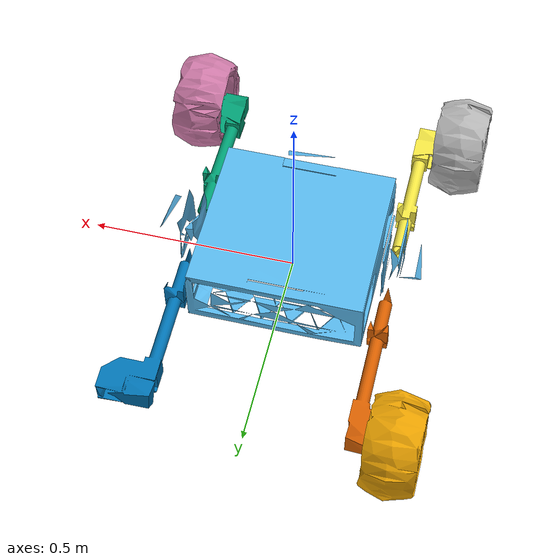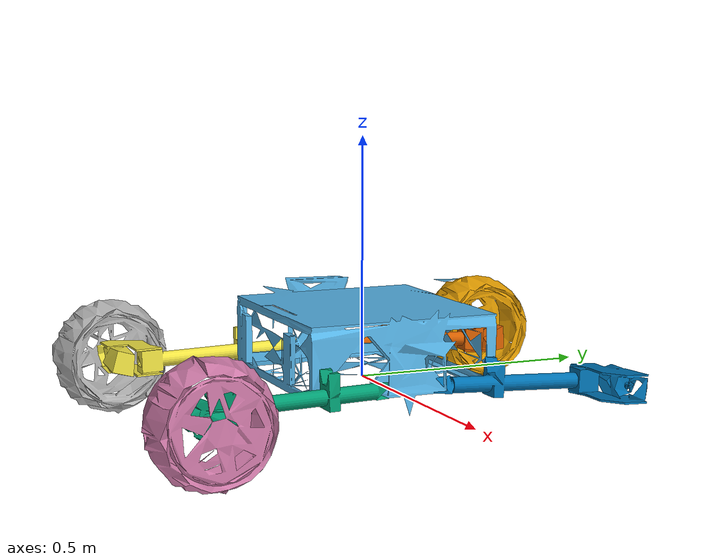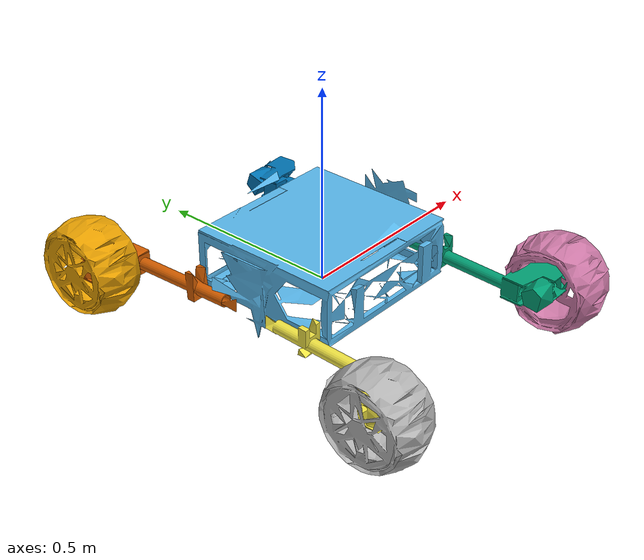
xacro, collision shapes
<?xml version="1.0"?>
<robot xmlns:xacro="http://www.ros.org/wiki/xacro"  name="eve">

    <xacro:arg name="mesh_path" default="package://mks_description/meshes"/>

    <link name="root" />

    <link name="chassis">
        <visual>
            <origin xyz="0 0 0.0" rpy="${pi/2} 0 0"/>
            <geometry>
                <mesh filename="$(arg mesh_path)/chassis.stl" scale="0.001 0.001 0.001"/>
            </geometry>
        </visual>
        <collision>
            <origin xyz="0 0 0" rpy="${pi/2} 0 0"/>
            <geometry>
                <mesh filename="$(arg mesh_path)/simplified_meshes/chassis_simp.stl" scale="0.001 0.001 0.001"/>
            </geometry>
        </collision>
        <inertial>
            <origin xyz="0 0 0" rpy="0 0 0"/>
            <mass value="5.0"/>
            <inertia ixx="0.013" ixy="0" ixz="0" iyy="0.009" iyz="0" izz="0.005"/>
        </inertial>
    </link>

    <joint name="base_joint" type="fixed">
        <parent link="root"/>
        <child link="chassis"/>
        <origin xyz="0 0 0" rpy="0 0 0"/>
    </joint>

    <link name="front_left_leg">
        <visual>
            <origin xyz="-0.247 0.058093 -0.025691" rpy="${pi/2} 0 0"/>
            <geometry>
                <mesh filename="$(arg mesh_path)/front_left_leg.stl" scale="0.001 0.001 0.001"/>
            </geometry>
        </visual>
        <collision>
            <origin xyz="-0.247 0.058093 -0.025691" rpy="${pi/2} 0 0"/>
            <geometry>
                <mesh filename="$(arg mesh_path)/simplified_meshes/front_left_leg_simp.stl" scale="0.001 0.001 0.001"/>
            </geometry>
        </collision>
        <inertial>
            <origin xyz="0 0 0" rpy="0 0 0"/>
            <mass value="1.5"/>
            <inertia ixx="0.008" ixy="0" ixz="0" iyy="0.008" iyz="0" izz="0.0009"/>
        </inertial>
    </link>

    <link name="front_right_leg">
        <visual>
            <origin xyz="0.247 0.058093 -0.025691" rpy="${pi/2} 0 0"/>
            <geometry>
                <mesh filename="$(arg mesh_path)/front_right_leg.stl" scale="0.001 0.001 0.001"/>
            </geometry>
        </visual>
        <collision>
            <origin xyz="0.247 0.058093 -0.025691" rpy="${pi/2} 0 0"/>
            <geometry>
                <mesh filename="$(arg mesh_path)/simplified_meshes/front_right_leg_simp.stl" scale="0.001 0.001 0.001"/>
            </geometry>
        </collision>
        <inertial>
            <origin xyz="0 0 0" rpy="0 0 0"/>
            <mass value="1.5"/>
            <inertia ixx="0.008" ixy="0" ixz="0" iyy="0.008" iyz="0" izz="0.0009"/>
        </inertial>
    </link>

    <link name="back_left_leg">
        <visual>
            <origin xyz="-0.247 -0.058093 -0.025691" rpy="${pi/2} 0 0"/>
            <geometry>
                <mesh filename="$(arg mesh_path)/back_left_leg.stl" scale="0.001 0.001 0.001"/>
            </geometry>
        </visual>
        <collision>
            <origin xyz="-0.247 -0.058093 -0.025691" rpy="${pi/2} 0 0"/>
            <geometry>
                <mesh filename="$(arg mesh_path)/simplified_meshes/back_left_leg_simp.stl" scale="0.001 0.001 0.001"/>
            </geometry>
        </collision>
        <inertial>
            <origin xyz="0 0 0" rpy="0 0 0"/>
            <mass value="1.5"/>
            <inertia ixx="0.008" ixy="0" ixz="0" iyy="0.008" iyz="0" izz="0.0009"/>
        </inertial>
    </link>

    <link name="back_right_leg">
        <visual>
            <origin xyz="0.247 -0.058093 -0.025691" rpy="${pi/2} 0 0"/>
            <geometry>
                <mesh filename="$(arg mesh_path)/back_right_leg.stl" scale="0.001 0.001 0.001"/>
            </geometry>
        </visual>
        <collision>
            <origin xyz="0.247 -0.058093 -0.025691" rpy="${pi/2} 0 0"/>
            <geometry>
                <mesh filename="$(arg mesh_path)/simplified_meshes/back_right_leg_simp.stl" scale="0.001 0.001 0.001"/>
            </geometry>
        </collision>
        <inertial>
            <origin xyz="0 0 0" rpy="0 0 0"/>
            <mass value="1.5"/>
            <inertia ixx="0.008" ixy="0" ixz="0" iyy="0.008" iyz="0" izz="0.0009"/>
        </inertial>
    </link>

    <link name="front_left_wheel">
        <visual>
            <origin xyz="-0.3395 0.445997 -0.016173" rpy="${pi/2} 0 0"/>
            <geometry>
                <mesh filename="$(arg mesh_path)/front_left_wheel.stl" scale="0.001 0.001 0.001"/>
            </geometry>
        </visual>
        <collision>
            <origin xyz="-0.3395 0.445997 -0.016173" rpy="${pi/2} 0 0"/>
            <geometry>
                <mesh filename="$(arg mesh_path)/simplified_meshes/front_left_wheel_simp.stl" scale="0.001 0.001 0.001"/>
            </geometry>
        </collision>
        <inertial>
            <origin xyz="0 0 0" rpy="0 0 0"/>
            <mass value="0.8"/>
            <inertia ixx="0.001" ixy="0" ixz="0" iyy="0.0009" iyz="0" izz="0.0009"/>
        </inertial>
    </link>

    <link name="front_right_wheel">
        <visual>
            <origin xyz="0.3395 0.445997 -0.016173" rpy="${pi/2} 0 0"/>
            <geometry>
                <mesh filename="$(arg mesh_path)/front_right_wheel.stl" scale="0.001 0.001 0.001"/>
            </geometry>
        </visual>
        <collision>
            <origin xyz="0.3395 0.445997 -0.016173" rpy="${pi/2} 0 0"/>
            <geometry>
                <mesh filename="$(arg mesh_path)/simplified_meshes/front_right_wheel_simp.stl" scale="0.001 0.001 0.001"/>
            </geometry>
        </collision>
        <inertial>
            <origin xyz="0 0 0" rpy="0 0 0"/>
            <mass value="0.8"/>
            <inertia ixx="0.001" ixy="0" ixz="0" iyy="0.0009" iyz="0" izz="0.0009"/>
        </inertial>
    </link>

    <link name="back_left_wheel">
        <visual>
            <origin xyz="-0.3395 0.445997 -0.016173" rpy="${pi/2} 0 0"/>
            <geometry>
                <mesh filename="$(arg mesh_path)/back_left_wheel.stl" scale="0.001 0.001 0.001"/>
            </geometry>
        </visual>
        <collision>
            <origin xyz="-0.3395 0.445997 -0.016173" rpy="${pi/2} 0 0"/>
            <geometry>
                <mesh filename="$(arg mesh_path)/simplified_meshes/back_left_wheel_simp.stl" scale="0.001 0.001 0.001"/>
            </geometry>
        </collision>
        <inertial>
            <origin xyz="0 0 0" rpy="0 0 0"/>
            <mass value="0.8"/>
            <inertia ixx="0.001" ixy="0" ixz="0" iyy="0.0009" iyz="0" izz="0.0009"/>
        </inertial>
    </link>

    <link name="back_right_wheel">
        <visual>
            <origin xyz="0.3395 0.445997 -0.016173" rpy="${pi/2} 0 0"/>
            <geometry>
                <mesh filename="$(arg mesh_path)/back_right_wheel.stl" scale="0.001 0.001 0.001"/>
            </geometry>
        </visual>
        <collision>
            <origin xyz="0.3395 0.445997 -0.016173" rpy="${pi/2} 0 0"/>
            <geometry>
                <mesh filename="$(arg mesh_path)/simplified_meshes/back_right_wheel_simp.stl" scale="0.001 0.001 0.001"/>
            </geometry>
        </collision>
        <inertial>
            <origin xyz="0 0 0" rpy="0 0 0"/>
            <mass value="0.8"/>
            <inertia ixx="0.001" ixy="0" ixz="0" iyy="0.0009" iyz="0" izz="0.0009"/>
        </inertial>
    </link>

    <joint name="front_left_leg_to_chassis" type="revolute">
        <parent link="chassis"/>
        <child link="front_left_leg"/>
        <origin xyz="0.247 -0.058093 +0.025691" rpy="0 0 0"/>
        <axis xyz="1 0 0"/>
        <limit lower="0" upper="${pi/3}" velocity="1.0" effort="5.0"/>
    </joint>

    <joint name="front_right_leg_to_chassis" type="revolute">
        <parent link="chassis"/>
        <child link="front_right_leg"/>
        <origin xyz="-0.247 -0.058093 +0.025691" rpy="0 0 0"/>
        <axis xyz="1 0 0"/>
        <limit lower="0" upper="${pi/3}" velocity="1.0" effort="5.0"/>
    </joint>

    <joint name="back_left_leg_to_chassis" type="revolute">
        <parent link="chassis"/>
        <child link="back_left_leg"/>
        <origin xyz="0.247 0.058093 +0.025691" rpy="0 0 0"/>
        <axis xyz="1 0 0"/>
        <limit lower="-${pi/3}" upper="0" velocity="1.0" effort="5.0"/>
    </joint>

    <joint name="back_right_leg_to_chassis" type="revolute">
        <parent link="chassis"/>
        <child link="back_right_leg"/>
        <origin xyz="-0.247 0.058093 +0.025691" rpy="0 0 0"/>
        <axis xyz="1 0 0"/>
        <limit lower="-${pi/3}" upper="0" velocity="1.0" effort="5.0"/>
    </joint>

    <joint name="front_left_wheel_to_leg" type="continuous">
        <parent link="front_left_leg"/>
        <child link="front_left_wheel"/>
        <origin xyz="0.0925 -0.387904 -0.009518" rpy="0 0 0"/>
        <axis xyz="1 0 0"/>
    </joint>

    <joint name="front_right_wheel_to_leg" type="continuous">
        <parent link="front_right_leg"/>
        <child link="front_right_wheel"/>
        <origin xyz="-0.0925 -0.387904 -0.009518" rpy="0 0 0"/>
        <axis xyz="1 0 0"/>
    </joint>

    <joint name="back_left_wheel_to_leg" type="continuous">
        <parent link="back_left_leg"/>
        <child link="back_left_wheel"/>
        <origin xyz="0.0925 0.387904 -0.009518" rpy="0 0 0"/>
        <axis xyz="1 0 0"/>
    </joint>

    <joint name="back_right_wheel_to_leg" type="continuous">
        <parent link="back_right_leg"/>
        <child link="back_right_wheel"/>
        <origin xyz="-0.0925 0.387904 -0.009518" rpy="0 0 0"/>
        <axis xyz="1 0 0"/>
    </joint>

    <ros2_control name="GazeboSimSystem" type="system">
        <hardware>
        <plugin>gz_ros2_control/GazeboSimSystem</plugin>
        </hardware>
        <joint name="front_left_wheel_to_leg">
        <command_interface name="velocity">
            <param name="min">-1</param>
            <param name="max">1</param>
        </command_interface>
        <state_interface name="position"/>
        <state_interface name="velocity"/>
        </joint>
        <joint name="front_right_wheel_to_leg">
        <command_interface name="velocity">
            <param name="min">-1</param>
            <param name="max">1</param>
        </command_interface>
        <state_interface name="position"/>
        <state_interface name="velocity"/>
        </joint>
        <joint name="back_left_wheel_to_leg">
        <command_interface name="velocity">
            <param name="min">-1</param>
            <param name="max">1</param>
        </command_interface>
        <state_interface name="position"/>
        <state_interface name="velocity"/>
        </joint>
        <joint name="back_right_wheel_to_leg">
        <command_interface name="velocity">
            <param name="min">-1</param>
            <param name="max">1</param>
        </command_interface>
        <state_interface name="position"/>
        <state_interface name="velocity"/>
        </joint>
    </ros2_control>

    <gazebo>
        <plugin filename="gz_ros2_control-system" name="gz_ros2_control::GazeboSimROS2ControlPlugin">
            <parameters>$(find mks_description)/config/eve_controller.yaml</parameters>
        </plugin>
    </gazebo>
</robot>
